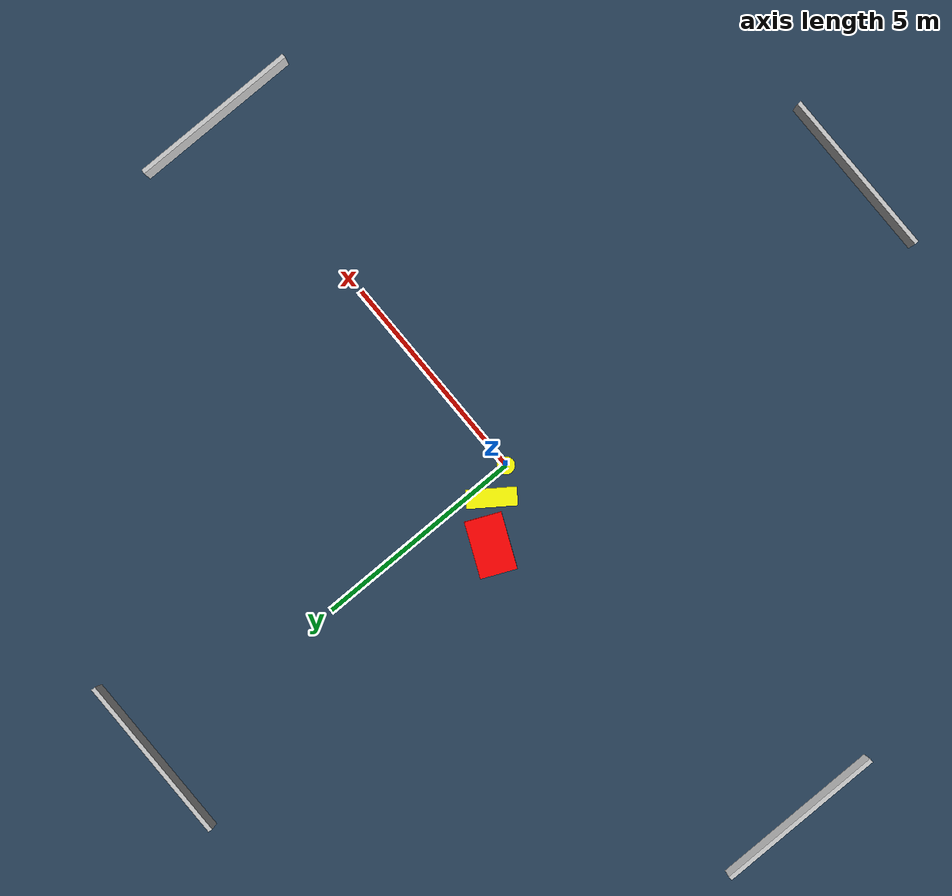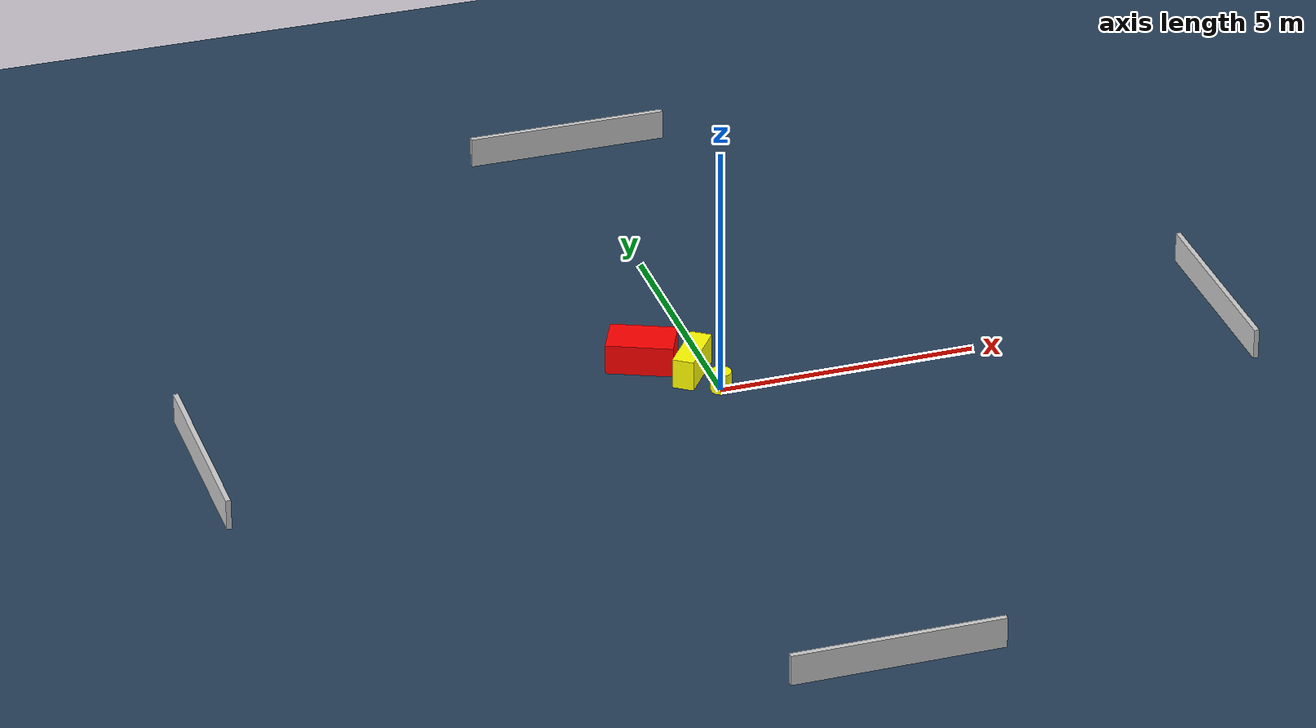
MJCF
<?xml version="1.0" ?>
<mujoco model="generated_environment">
  <option timestep="0.01" integrator="RK4" cone="elliptic"/>
  <default>
    <geom density="1"/>
  </default>
  <asset>
    <texture builtin="gradient" height="3072" name="skybox" rgb1="0.3 0.5 0.7" rgb2="0 0 0" type="skybox" width="512"/>
    <texture builtin="checker" height="300" name="groundplane" rgb1="0.2 0.3 0.4" rgb2="0.1 0.2 0.3" type="2d" width="300"/>
    <material name="groundplane" reflectance="0.2" texrepeat="5 5" texture="groundplane"/>
  </asset>
  <worldbody>
    <light dir="0 0 -1" directional="true" pos="0 0 1.5"/>
    <geom condim="3" friction="0.5 0.005 0.001" material="groundplane" name="floor" pos="0 0 0" size="0 0 0.05" type="plane"/>
    <body name="walls">
      <geom name="wall_1" condim="4" pos="-10.0 0.0 0.3" rgba="0.800000011920929 0.800000011920929 0.800000011920929 1.0" size="0.05 2.0 0.3" type="box"/>
      <geom name="wall_2" condim="4" pos="10.0 0.0 0.3" rgba="0.800000011920929 0.800000011920929 0.800000011920929 1.0" size="0.05 2.0 0.3" type="box"/>
      <geom name="wall_3" condim="4" pos="0.0 -10.0 0.3" rgba="0.800000011920929 0.800000011920929 0.800000011920929 1.0" size="2.0 0.05 0.3" type="box"/>
      <geom name="wall_4" condim="4" pos="0.0 10.0 0.3" rgba="0.800000011920929 0.800000011920929 0.800000011920929 1.0" size="2.0 0.05 0.3" type="box"/>
    </body>
    <body name="robot">
      <joint name="joint_x" type="slide" pos="0 0 0" axis="1 0 0"/>
      <joint name="joint_y" type="slide" pos="0 0 0" axis="0 1 0"/>
      <geom name="robot" type="cylinder" pos="0.0 0.0 0.2" size="0.2 0.2 0.0" mass="5.0" friction="1.0 0.005 0.0001" condim="4" rgba="1.0 1.0 0.0 1.0"/>
    </body>
    <body name="obstacle_1_movable">
      <geom name="obstacle_1_movable" condim="4" pos="-0.3443551411989166 0.6952774697572561 0.3" euler="0 0 144.4946432531145" friction="0.0 0.005 0.001" rgba="1.0 1.0 0.0 1.0" size="0.20824839124016142 0.5646335372883413 0.3" type="box" mass="0.1"/>
      <joint type="free"/>
    </body>
    <body name="obstacle_2_static">
      <geom name="obstacle_2_static" condim="4" pos="-1.1307087031381036 1.3716935665395595 0.3" euler="0 0 336.13757224247206" friction="0.0 0.005 0.001" rgba="1.0 0.0 0.0 1.0" size="0.6459938069462337 0.4204645635607703 0.3" type="box"/>
    </body>
  </worldbody>
  <actuator>
    <motor name="actuator_x" joint="joint_x" gear="1" ctrlrange="-1 1"/>
    <motor name="actuator_y" joint="joint_y" gear="1" ctrlrange="-1 1"/>
  </actuator>
</mujoco>
